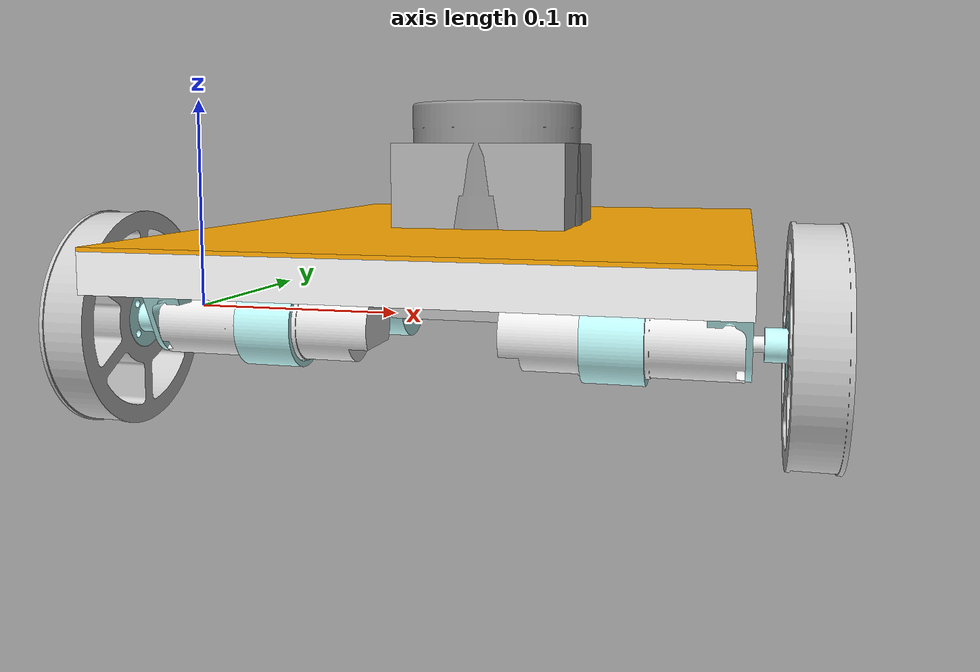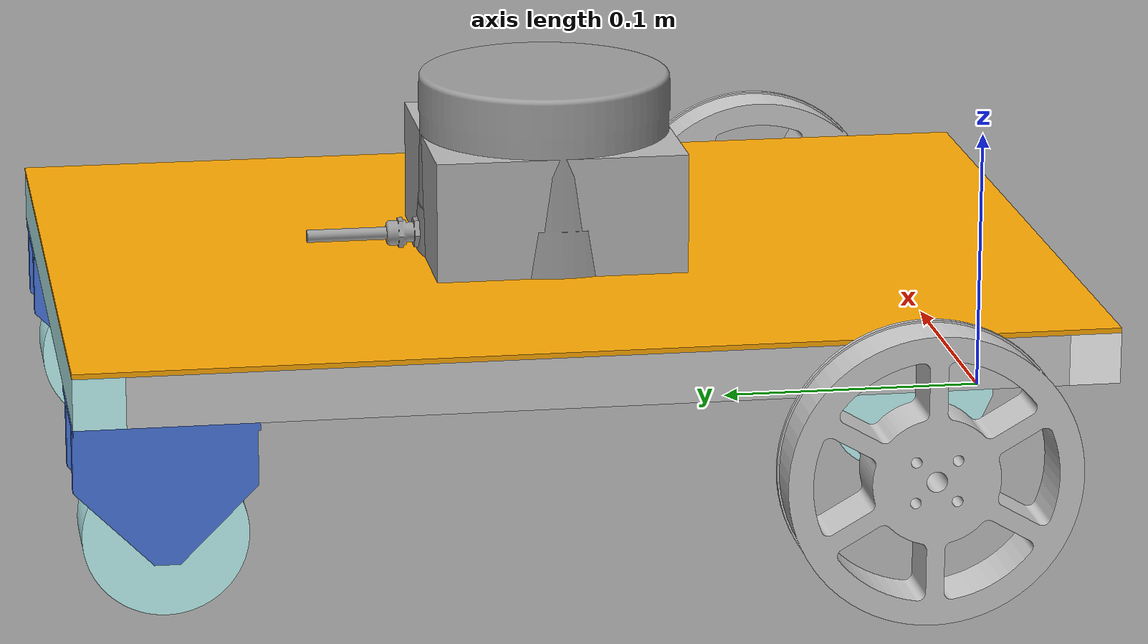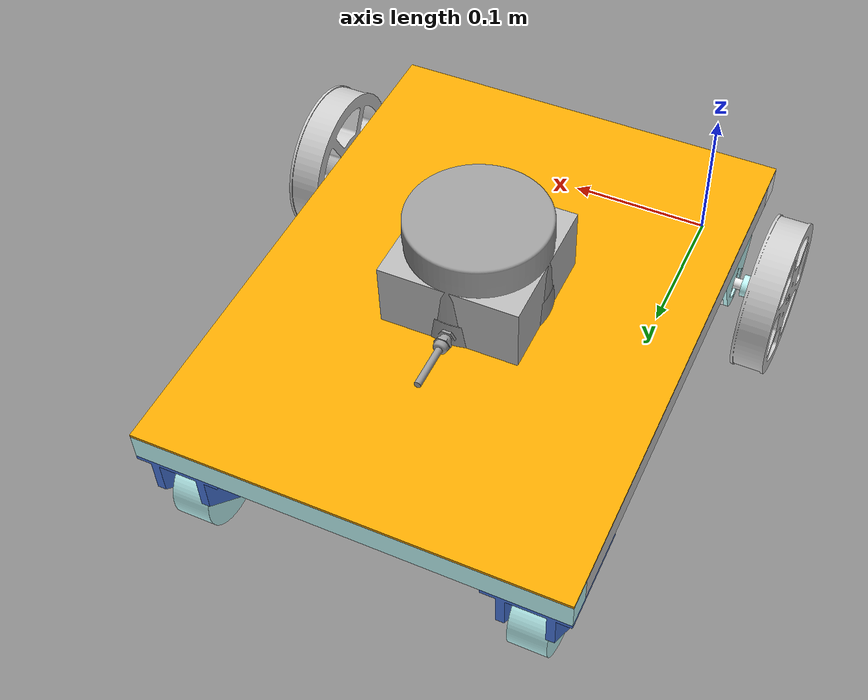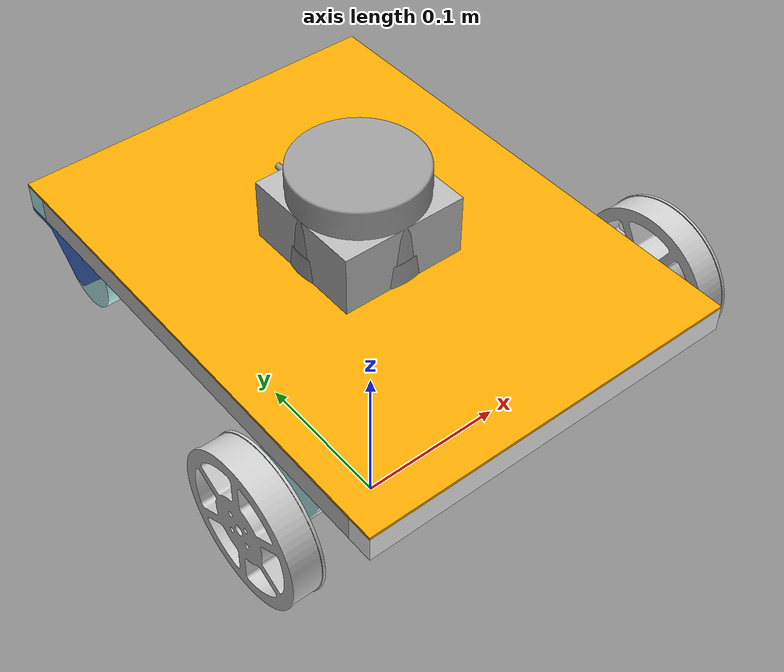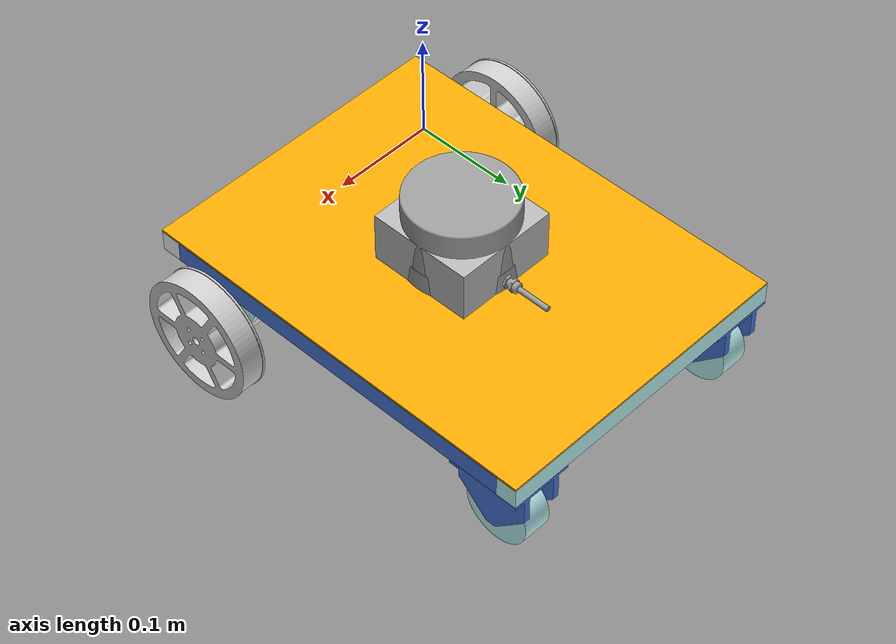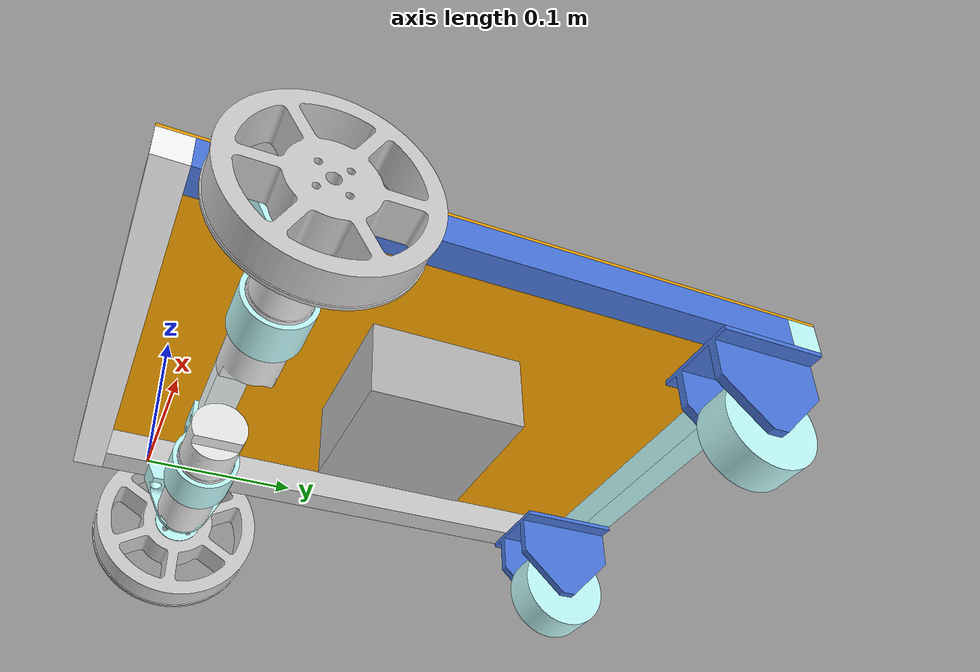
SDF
<sdf version='1.11'>
    <model name='mini_agv'>
    <link name='base_link'>
      <inertial>
        <pose>0 0 0 0 0 0</pose>
        <mass>0.001</mass>
        <inertia>
          <ixx>1e-6</ixx><iyy>1e-6</iyy><izz>1e-6</izz>
          <ixy>0</ixy><ixz>0</ixz><iyz>0</iyz>
        </inertia>
      </inertial>
    </link>

    <joint name='base_to_assy' type='fixed'>
      <parent>base_link</parent>
      <child>base_assy_link</child>
      <pose>0 0 0 0 0 -1.5708</pose>   <!-- rotate child by -90° about Z -->
    </joint>
      <link name='base_assy_link'>
        <inertial>
          <pose>0.111896416619668 0.12818213973935061 0.024156114101248152 0 0 0</pose>
          <mass>3.5293253999999998</mass>
          <inertia>
            <ixx>0.054184095269773733</ixx>
            <ixy>4.0963213800149223e-08</ixy>
            <ixz>1.6729364728587659e-08</ixz>
            <iyy>0.035016300053187059</iyy>
            <iyz>-0.0021047685443255099</iyz>
            <izz>0.083572850012242197</izz>
          </inertia>
        </inertial>
        <collision name='base_assy_link_collision'>
          <pose>0.111897 0.15313199999999999 0.0100307 0 0 0</pose>
          <geometry>
            <mesh>
              <scale>1 1 1</scale>
              <uri>model://mini_agv_description/assets/part_5.stl</uri>
            </mesh>
          </geometry>
        </collision>
        <collision name='base_assy_link_collision_1'>
          <pose>0.111897 0.15313199999999999 0.0100307 0 0 0</pose>
          <geometry>
            <mesh>
              <scale>1 1 1</scale>
              <uri>model://mini_agv_description/assets/part_6.stl</uri>
            </mesh>
          </geometry>
        </collision>
        <collision name='base_assy_link_collision_2'>
          <pose>0.111897 0.15313199999999999 0.0100307 0 0 0</pose>
          <geometry>
            <mesh>
              <scale>1 1 1</scale>
              <uri>model://mini_agv_description/assets/part_3.stl</uri>
            </mesh>
          </geometry>
        </collision>
        <collision name='base_assy_link_collision_3'>
          <pose>0.111897 0.15313199999999999 0.0100307 0 0 0</pose>
          <geometry>
            <mesh>
              <scale>1 1 1</scale>
              <uri>model://mini_agv_description/assets/part_4.stl</uri>
            </mesh>
          </geometry>
        </collision>
        <collision name='base_assy_link_collision_4'>
          <pose>0.111897 0.15313199999999999 0.0100307 0 0 0</pose>
          <geometry>
            <mesh>
              <scale>1 1 1</scale>
              <uri>model://mini_agv_description/assets/part_2.stl</uri>
            </mesh>
          </geometry>
        </collision>
        <collision name='base_assy_link_collision_5'>
          <pose>0.111897 0.15313199999999999 0.0100307 0 0 0</pose>
          <geometry>
            <mesh>
              <scale>1 1 1</scale>
              <uri>model://mini_agv_description/assets/part_1.stl</uri>
            </mesh>
          </geometry>
        </collision>
        <collision name='base_assy_link_fixed_joint_lump__caster_frame_link_collision_6'>
          <pose>0.2183970000000911 0.31813195041173109 -0.038219299999999998 0 0 1.5708</pose>
          <geometry>
            <mesh>
              <scale>1 1 1</scale>
              <uri>model://mini_agv_description/assets/caster_frame.stl</uri>
            </mesh>
          </geometry>
        </collision>
        <collision name='base_assy_link_fixed_joint_lump__caster_frame_2_link_collision_7'>
          <pose>-0.021603439999908929 0.31813195041173109 -0.038219299999999998 0 0 1.5708</pose>
          <geometry>
            <mesh>
              <scale>1 1 1</scale>
              <uri>model://mini_agv_description/assets/caster_frame.stl</uri>
            </mesh>
          </geometry>
        </collision>
        <collision name='base_assy_link_fixed_joint_lump__velodyne_lidar_link_collision_8'>
          <pose>0.111897 0.15313199999999999 0.032030700000000002 1.5707899999999997 -1.6653345369377348e-16 1.5708</pose>
          <geometry>
            <mesh>
              <scale>1 1 1</scale>
              <uri>model://mini_agv_description/assets/velodyne_lidar.stl</uri>
            </mesh>
          </geometry>
        </collision>
        <collision name='base_assy_link_fixed_joint_lump__pg36_assy_link_collision_9'>
          <pose>0.25889699999995269 0.033132325712435733 -0.0129693 -3.1415889803846895 -1.5707963118937354 0</pose>
          <geometry>
            <mesh>
              <scale>1 1 1</scale>
              <uri>model://mini_agv_description/assets/pg36_body.stl</uri>
            </mesh>
          </geometry>
        </collision>
        <collision name='base_assy_link_fixed_joint_lump__pg36_assy_link_collision_10'>
          <pose>0.25909699999995139 0.033132326447076747 -0.0129693 -1.5708 0 1.5708</pose>
          <geometry>
            <mesh>
              <scale>1 1 1</scale>
              <uri>model://mini_agv_description/assets/bracket_body.stl</uri>
            </mesh>
          </geometry>
        </collision>
        <collision name='base_assy_link_fixed_joint_lump__pg36_assy_link_collision_11'>
          <pose>0.26189699999993249 0.033132336732051043 -0.0129693 -1.5708 0 1.5708</pose>
          <geometry>
            <mesh>
              <scale>1 1 1</scale>
              <uri>model://mini_agv_description/assets/bracket_shaft.stl</uri>
            </mesh>
          </geometry>
        </collision>
        <collision name='base_assy_link_fixed_joint_lump__pg36_assy_link_collision_12'>
          <pose>0.25889699999995269 0.033132325712435733 -0.0129693 -3.1415889803846895 -1.5707963118937354 0</pose>
          <geometry>
            <mesh>
              <scale>1 1 1</scale>
              <uri>model://mini_agv_description/assets/pg36_shaft.stl</uri>
            </mesh>
          </geometry>
        </collision>
        <collision name='base_assy_link_fixed_joint_lump__pg36_assy_2_link_collision_13'>
          <pose>-0.035103399999952781 0.033132325712435733 -0.0129693 -3.6732051033734664e-06 -1.5707963267948966 0</pose>
          <geometry>
            <mesh>
              <scale>1 1 1</scale>
              <uri>model://mini_agv_description/assets/pg36_body.stl</uri>
            </mesh>
          </geometry>
        </collision>
        <collision name='base_assy_link_fixed_joint_lump__pg36_assy_2_link_collision_14'>
          <pose>-0.035303399999951433 0.033132326447076747 -0.0129693 -1.5708 0 -1.5708</pose>
          <geometry>
            <mesh>
              <scale>1 1 1</scale>
              <uri>model://mini_agv_description/assets/bracket_body.stl</uri>
            </mesh>
          </geometry>
        </collision>
        <collision name='base_assy_link_fixed_joint_lump__pg36_assy_2_link_collision_15'>
          <pose>-0.038103399999932543 0.033132336732051043 -0.0129693 -1.5708 0 -1.5708</pose>
          <geometry>
            <mesh>
              <scale>1 1 1</scale>
              <uri>model://mini_agv_description/assets/bracket_shaft.stl</uri>
            </mesh>
          </geometry>
        </collision>
        <collision name='base_assy_link_fixed_joint_lump__pg36_assy_2_link_collision_16'>
          <pose>-0.035103399999952781 0.033132325712435733 -0.0129693 -3.6732051033734664e-06 -1.5707963267948966 0</pose>
          <geometry>
            <mesh>
              <scale>1 1 1</scale>
              <uri>model://mini_agv_description/assets/pg36_shaft.stl</uri>
            </mesh>
          </geometry>
        </collision>
        <visual name='base_assy_link_visual'>
          <pose>0.111897 0.15313199999999999 0.0100307 0 0 0</pose>
          <geometry>
            <mesh>
              <scale>1 1 1</scale>
              <uri>model://mini_agv_description/assets/part_5.stl</uri>
            </mesh>
          </geometry>
          <material>
            <diffuse>0.96078372 1 1 1</diffuse>
            <ambient>0.96078372 1 1 1</ambient>
          </material>
        </visual>
        <visual name='base_assy_link_visual_1'>
          <pose>0.111897 0.15313199999999999 0.0100307 0 0 0</pose>
          <geometry>
            <mesh>
              <scale>1 1 1</scale>
              <uri>model://mini_agv_description/assets/part_6.stl</uri>
            </mesh>
          </geometry>
          <material>
            <diffuse>1 0.661764979 0.00490196235 1</diffuse>
            <ambient>1 0.661764979 0.00490196235 1</ambient>
          </material>
        </visual>
        <visual name='base_assy_link_visual_2'>
          <pose>0.111897 0.15313199999999999 0.0100307 0 0 0</pose>
          <geometry>
            <mesh>
              <scale>1 1 1</scale>
              <uri>model://mini_agv_description/assets/part_3.stl</uri>
            </mesh>
          </geometry>
          <material>
            <diffuse>0.28921625 0.475489974 0.882352531 1</diffuse>
            <ambient>0.28921625 0.475489974 0.882352531 1</ambient>
          </material>
        </visual>
        <visual name='base_assy_link_visual_3'>
          <pose>0.111897 0.15313199999999999 0.0100307 0 0 0</pose>
          <geometry>
            <mesh>
              <scale>1 1 1</scale>
              <uri>model://mini_agv_description/assets/part_4.stl</uri>
            </mesh>
          </geometry>
          <material>
            <diffuse>1 1 1 1</diffuse>
            <ambient>1 1 1 1</ambient>
          </material>
        </visual>
        <visual name='base_assy_link_visual_4'>
          <pose>0.111897 0.15313199999999999 0.0100307 0 0 0</pose>
          <geometry>
            <mesh>
              <scale>1 1 1</scale>
              <uri>model://mini_agv_description/assets/part_2.stl</uri>
            </mesh>
          </geometry>
          <material>
            <diffuse>0.808823764 0.808823764 0.808823764 1</diffuse>
            <ambient>0.808823764 0.808823764 0.808823764 1</ambient>
          </material>
        </visual>
        <visual name='base_assy_link_visual_5'>
          <pose>0.111897 0.15313199999999999 0.0100307 0 0 0</pose>
          <geometry>
            <mesh>
              <scale>1 1 1</scale>
              <uri>model://mini_agv_description/assets/part_1.stl</uri>
            </mesh>
          </geometry>
          <material>
            <diffuse>0.769607484 1 1 1</diffuse>
            <ambient>0.769607484 1 1 1</ambient>
          </material>
        </visual>
        <visual name='base_assy_link_fixed_joint_lump__caster_frame_link_visual_6'>
          <pose>0.2183970000000911 0.31813195041173109 -0.038219299999999998 0 0 1.5708</pose>
          <geometry>
            <mesh>
              <scale>1 1 1</scale>
              <uri>model://mini_agv_description/assets/caster_frame.stl</uri>
            </mesh>
          </geometry>
          <material>
            <diffuse>0.28921625 0.475489974 0.882352531 1</diffuse>
            <ambient>0.28921625 0.475489974 0.882352531 1</ambient>
          </material>
        </visual>
        <visual name='base_assy_link_fixed_joint_lump__caster_frame_2_link_visual_7'>
          <pose>-0.021603439999908929 0.31813195041173109 -0.038219299999999998 0 0 1.5708</pose>
          <geometry>
            <mesh>
              <scale>1 1 1</scale>
              <uri>model://mini_agv_description/assets/caster_frame.stl</uri>
            </mesh>
          </geometry>
          <material>
            <diffuse>0.28921625 0.475489974 0.882352531 1</diffuse>
            <ambient>0.28921625 0.475489974 0.882352531 1</ambient>
          </material>
        </visual>
        <visual name='base_assy_link_fixed_joint_lump__velodyne_lidar_link_visual_8'>
          <pose>0.111897 0.15313199999999999 0.032030700000000002 1.5707899999999997 -1.6653345369377348e-16 1.5708</pose>
          <geometry>
            <mesh>
              <scale>1 1 1</scale>
              <uri>model://mini_agv_description/assets/velodyne_lidar.stl</uri>
            </mesh>
          </geometry>
          <material>
            <diffuse>0.612744987 0.612744987 0.612744987 1</diffuse>
            <ambient>0.612744987 0.612744987 0.612744987 1</ambient>
          </material>
        </visual>
        <visual name='base_assy_link_fixed_joint_lump__pg36_assy_link_visual_9'>
          <pose>0.25889699999995269 0.033132325712435733 -0.0129693 -3.1415889803846895 -1.5707963118937354 0</pose>
          <geometry>
            <mesh>
              <scale>1 1 1</scale>
              <uri>model://mini_agv_description/assets/pg36_body.stl</uri>
            </mesh>
          </geometry>
          <material>
            <diffuse>0.936275005 0.936275005 0.936275005 1</diffuse>
            <ambient>0.936275005 0.936275005 0.936275005 1</ambient>
          </material>
        </visual>
        <visual name='base_assy_link_fixed_joint_lump__pg36_assy_link_visual_10'>
          <pose>0.25909699999995139 0.033132326447076747 -0.0129693 -1.5708 0 1.5708</pose>
          <geometry>
            <mesh>
              <scale>1 1 1</scale>
              <uri>model://mini_agv_description/assets/bracket_body.stl</uri>
            </mesh>
          </geometry>
          <material>
            <diffuse>0.769607484 1 1 1</diffuse>
            <ambient>0.769607484 1 1 1</ambient>
          </material>
        </visual>
        <visual name='base_assy_link_fixed_joint_lump__pg36_assy_link_visual_11'>
          <pose>0.26189699999993249 0.033132336732051043 -0.0129693 -1.5708 0 1.5708</pose>
          <geometry>
            <mesh>
              <scale>1 1 1</scale>
              <uri>model://mini_agv_description/assets/bracket_shaft.stl</uri>
            </mesh>
          </geometry>
          <material>
            <diffuse>0.769607484 1 1 1</diffuse>
            <ambient>0.769607484 1 1 1</ambient>
          </material>
        </visual>
        <visual name='base_assy_link_fixed_joint_lump__pg36_assy_link_visual_12'>
          <pose>0.25889699999995269 0.033132325712435733 -0.0129693 -3.1415889803846895 -1.5707963118937354 0</pose>
          <geometry>
            <mesh>
              <scale>1 1 1</scale>
              <uri>model://mini_agv_description/assets/pg36_shaft.stl</uri>
            </mesh>
          </geometry>
          <material>
            <diffuse>0.936275005 0.936275005 0.936275005 1</diffuse>
            <ambient>0.936275005 0.936275005 0.936275005 1</ambient>
          </material>
        </visual>
        <visual name='base_assy_link_fixed_joint_lump__pg36_assy_2_link_visual_13'>
          <pose>-0.035103399999952781 0.033132325712435733 -0.0129693 -3.6732051033734664e-06 -1.5707963267948966 0</pose>
          <geometry>
            <mesh>
              <scale>1 1 1</scale>
              <uri>model://mini_agv_description/assets/pg36_body.stl</uri>
            </mesh>
          </geometry>
          <material>
            <diffuse>0.936275005 0.936275005 0.936275005 1</diffuse>
            <ambient>0.936275005 0.936275005 0.936275005 1</ambient>
          </material>
        </visual>
        <visual name='base_assy_link_fixed_joint_lump__pg36_assy_2_link_visual_14'>
          <pose>-0.035303399999951433 0.033132326447076747 -0.0129693 -1.5708 0 -1.5708</pose>
          <geometry>
            <mesh>
              <scale>1 1 1</scale>
              <uri>model://mini_agv_description/assets/bracket_body.stl</uri>
            </mesh>
          </geometry>
          <material>
            <diffuse>0.769607484 1 1 1</diffuse>
            <ambient>0.769607484 1 1 1</ambient>
          </material>
        </visual>
        <visual name='base_assy_link_fixed_joint_lump__pg36_assy_2_link_visual_15'>
          <pose>-0.038103399999932543 0.033132336732051043 -0.0129693 -1.5708 0 -1.5708</pose>
          <geometry>
            <mesh>
              <scale>1 1 1</scale>
              <uri>model://mini_agv_description/assets/bracket_shaft.stl</uri>
            </mesh>
          </geometry>
          <material>
            <diffuse>0.769607484 1 1 1</diffuse>
            <ambient>0.769607484 1 1 1</ambient>
          </material>
        </visual>
        <visual name='base_assy_link_fixed_joint_lump__pg36_assy_2_link_visual_16'>
          <pose>-0.035103399999952781 0.033132325712435733 -0.0129693 -3.6732051033734664e-06 -1.5707963267948966 0</pose>
          <geometry>
            <mesh>
              <scale>1 1 1</scale>
              <uri>model://mini_agv_description/assets/pg36_shaft.stl</uri>
            </mesh>
          </geometry>
          <material>
            <diffuse>0.936275005 0.936275005 0.936275005 1</diffuse>
            <ambient>0.936275005 0.936275005 0.936275005 1</ambient>
          </material>
        </visual>
      </link>

      <!-- ==================== JOINTS AND LINKS ==================== -->
      <joint name='caster_wheel_1_joint' type='revolute'>
        <pose relative_to='base_assy_link'>0.2183970000000911 0.31813195041173109 -0.038219299999999998 1.570792653558434 -1.5707926536057681 -1.5707926535624277</pose>
        <parent>base_assy_link</parent>
        <child>caster_wheel_link</child>
        <axis>
          <xyz>0 0 1</xyz>
          <limit>
            <effort>10</effort>
            <velocity>10</velocity>
            <lower>-inf</lower>
            <upper>inf</upper>
          </limit>
          <dynamics>
            <spring_reference>0</spring_reference>
            <spring_stiffness>0</spring_stiffness>
          </dynamics>
        </axis>
      </joint>

      <link name='caster_wheel_link'>
        <pose relative_to='caster_wheel_1_joint'>0 0 0 0 0 0</pose>
        <inertial>
          <pose>0 0 -0.0135 0 0 0</pose>
          <mass>0.12232800000000001</mass>
          <inertia>
            <ixx>3.9024499999999999e-05</ixx>
            <ixy>0</ixy>
            <ixz>0</ixz>
            <iyy>3.9024499999999999e-05</iyy>
            <iyz>0</iyz>
            <izz>6.3186099999999995e-05</izz>
          </inertia>
        </inertial>
        <collision name='caster_wheel_link_collision'>
          <pose>0 0 0 1.5708 0 0</pose>
          <geometry>
            <mesh>
              <scale>1 1 1</scale>
              <uri>model://mini_agv_description/assets/caster_wheel.stl</uri>
            </mesh>
          </geometry>
        </collision>
        <visual name='caster_wheel_link_visual'>
          <pose>0 0 0 1.5708 0 0</pose>
          <geometry>
            <mesh>
              <scale>1 1 1</scale>
              <uri>model://mini_agv_description/assets/caster_wheel.stl</uri>
            </mesh>
          </geometry>
          <material>
            <diffuse>0.769607484 1 1 1</diffuse>
            <ambient>0.769607484 1 1 1</ambient>
          </material>
        </visual>
      </link>

      <joint name='caster_wheel_2_joint' type='revolute'>
        <pose relative_to='base_assy_link'>0.0053965599999089287 0.31813204958826891 -0.038219299999999998 -1.570792653558434 1.5707926536057681 -1.5707926535624277</pose>
        <parent>base_assy_link</parent>
        <child>caster_wheel_2_link</child>
        <axis>
          <xyz>0 0 1</xyz>
          <limit>
            <effort>10</effort>
            <velocity>10</velocity>
            <lower>-inf</lower>
            <upper>inf</upper>
          </limit>
          <dynamics>
            <spring_reference>0</spring_reference>
            <spring_stiffness>0</spring_stiffness>
          </dynamics>
        </axis>
      </joint>

      <link name='caster_wheel_2_link'>
        <pose relative_to='caster_wheel_2_joint'>0 0 0 0 0 0</pose>
        <inertial>
          <pose>0 0 -0.0135 0 0 0</pose>
          <mass>0.12232800000000001</mass>
          <inertia>
            <ixx>3.9024499999999999e-05</ixx>
            <ixy>0</ixy>
            <ixz>0</ixz>
            <iyy>3.9024499999999999e-05</iyy>
            <iyz>0</iyz>
            <izz>6.3186099999999995e-05</izz>
          </inertia>
        </inertial>
        <collision name='caster_wheel_2_link_collision'>
          <pose>0 0 0 1.5708 0 0</pose>
          <geometry>
            <mesh>
              <scale>1 1 1</scale>
              <uri>model://mini_agv_description/assets/caster_wheel.stl</uri>
            </mesh>
          </geometry>
        </collision>
        <visual name='caster_wheel_2_link_visual'>
          <pose>0 0 0 1.5708 0 0</pose>
          <geometry>
            <mesh>
              <scale>1 1 1</scale>
              <uri>model://mini_agv_description/assets/caster_wheel.stl</uri>
            </mesh>
          </geometry>
          <material>
            <diffuse>0.769607484 1 1 1</diffuse>
            <ambient>0.769607484 1 1 1</ambient>
          </material>
        </visual>
      </link>

      <joint name='wheel_1_joint' type='revolute'>
        <pose relative_to='base_assy_link'>0.28019699999980913 0.033132403951704428 -0.0129693 -1.570792653558434 1.5707926536057681 -1.5707926535624277</pose>
        <parent>base_assy_link</parent>
        <child>wheel_hub_assy_link</child>
        <axis>
          <xyz>0 0 -1</xyz>
          <limit>
            <effort>10</effort>
            <velocity>10</velocity>
            <lower>-inf</lower>
            <upper>inf</upper>
          </limit>
          <dynamics>
            <spring_reference>0</spring_reference>
            <spring_stiffness>0</spring_stiffness>
          </dynamics>
        </axis>
      </joint>

      <link name='wheel_hub_assy_link'>
        <pose relative_to='wheel_1_joint'>0 0 0 0 0 0</pose>
        <inertial>
          <pose>0 0 0.0084338399999999997 0 0 0</pose>
          <mass>0.177204</mass>
          <inertia>
            <ixx>0.000154537</ixx>
            <ixy>0</ixy>
            <ixz>0</ixz>
            <iyy>0.000154537</iyy>
            <iyz>0</iyz>
            <izz>0.00028956400000000002</izz>
          </inertia>
        </inertial>
        <collision name='wheel_hub_assy_link_collision'>
          <pose>0 0 0 1.5708 0 0</pose>
          <geometry>
            <mesh>
              <scale>1 1 1</scale>
              <uri>model://mini_agv_description/assets/wheel.stl</uri>
            </mesh>
          </geometry>
        </collision>
        <collision name='wheel_hub_assy_link_collision_1'>
          <pose>0 0 0 1.5708 0 0</pose>
          <geometry>
            <mesh>
              <scale>1 1 1</scale>
              <uri>model://mini_agv_description/assets/8mm_flange_hub.stl</uri>
            </mesh>
          </geometry>
        </collision>
        <visual name='wheel_hub_assy_link_visual'>
          <pose>0 0 0 1.5708 0 0</pose>
          <geometry>
            <mesh>
              <scale>1 1 1</scale>
              <uri>model://mini_agv_description/assets/wheel.stl</uri>
            </mesh>
          </geometry>
          <material>
            <diffuse>0.808823764 0.808823764 0.808823764 1</diffuse>
            <ambient>0.808823764 0.808823764 0.808823764 1</ambient>
          </material>
        </visual>
        <visual name='wheel_hub_assy_link_visual_1'>
          <pose>0 0 0 1.5708 0 0</pose>
          <geometry>
            <mesh>
              <scale>1 1 1</scale>
              <uri>model://mini_agv_description/assets/8mm_flange_hub.stl</uri>
            </mesh>
          </geometry>
          <material>
            <diffuse>0.769607484 1 1 1</diffuse>
            <ambient>0.769607484 1 1 1</ambient>
          </material>
        </visual>
      </link>

      <joint name='wheel_2_joint' type='revolute'>
        <pose relative_to='base_assy_link'>-0.05640339999980909 0.033132403951704428 -0.0129693 -1.5708 1.1102230246251565e-16 1.5707953071795873</pose>
        <parent>base_assy_link</parent>
        <child>wheel_hub_assy_2_link</child>
        <axis>
          <xyz>0 0 1</xyz>
          <limit>
            <effort>10</effort>
            <velocity>10</velocity>
            <lower>-inf</lower>
            <upper>inf</upper>
          </limit>
          <dynamics>
            <spring_reference>0</spring_reference>
            <spring_stiffness>0</spring_stiffness>
          </dynamics>
        </axis>
      </joint>

      <link name='wheel_hub_assy_2_link'>
        <pose relative_to='wheel_2_joint'>0 0 0 0 0 0</pose>
        <inertial>
          <pose>0 0 0.0084338399999999997 0 0 0</pose>
          <mass>0.177204</mass>
          <inertia>
            <ixx>0.000154537</ixx>
            <ixy>0</ixy>
            <ixz>0</ixz>
            <iyy>0.000154537</iyy>
            <iyz>0</iyz>
            <izz>0.00028956400000000002</izz>
          </inertia>
        </inertial>
        <collision name='wheel_hub_assy_2_link_collision'>
          <pose>0 0 0 1.5708 0 0</pose>
          <geometry>
            <mesh>
              <scale>1 1 1</scale>
              <uri>model://mini_agv_description/assets/wheel.stl</uri>
            </mesh>
          </geometry>
        </collision>
        <collision name='wheel_hub_assy_2_link_collision_1'>
          <pose>0 0 0 1.5708 0 0</pose>
          <geometry>
            <mesh>
              <scale>1 1 1</scale>
              <uri>model://mini_agv_description/assets/8mm_flange_hub.stl</uri>
            </mesh>
          </geometry>
        </collision>
        <visual name='wheel_hub_assy_2_link_visual'>
          <pose>0 0 0 1.5708 0 0</pose>
          <geometry>
            <mesh>
              <scale>1 1 1</scale>
              <uri>model://mini_agv_description/assets/wheel.stl</uri>
            </mesh>
          </geometry>
          <material>
            <diffuse>0.808823764 0.808823764 0.808823764 1</diffuse>
            <ambient>0.808823764 0.808823764 0.808823764 1</ambient>
          </material>
        </visual>
        <visual name='wheel_hub_assy_2_link_visual_1'>
          <pose>0 0 0 1.5708 0 0</pose>
          <geometry>
            <mesh>
              <scale>1 1 1</scale>
              <uri>model://mini_agv_description/assets/8mm_flange_hub.stl</uri>
            </mesh>
          </geometry>
          <material>
            <diffuse>0.769607484 1 1 1</diffuse>
            <ambient>0.769607484 1 1 1</ambient>
          </material>
        </visual>
      </link>

      <!-- Frames -->
      <frame name='caster_1_joint' attached_to='base_assy_link'>
        <pose>0.23189699999999999 0.31813200000000003 0.0100307 0 0 1.5708</pose>
      </frame>
      <frame name='caster_frame_link' attached_to='caster_1_joint'>
        <pose>0 0 0 0 0 0</pose>
      </frame>
      <frame name='caster_2_joint' attached_to='base_assy_link'>
        <pose>-0.0081034399999999999 0.31813200000000003 0.0100307 0 0 1.5708</pose>
      </frame>
      <frame name='caster_frame_2_link' attached_to='caster_2_joint'>
        <pose>0 0 0 0 0 0</pose>
      </frame>
      <frame name='lidar_joint' attached_to='base_assy_link'>
        <pose>0.111897 0.15313199999999999 0.032030700000000002 3.1415899999999999 0 1.5708</pose>
      </frame>
      <frame name='velodyne_lidar_link' attached_to='lidar_joint'>
        <pose>0 0 0 0 0 0</pose>
      </frame>
      <frame name='motor_1_joint' attached_to='base_assy_link'>
        <pose>0.25189699999999998 0.033132300000000003 0.0100307 0 0 1.5708</pose>
      </frame>
      <frame name='pg36_assy_link' attached_to='motor_1_joint'>
        <pose>0 0 0 0 0 0</pose>
      </frame>
      <frame name='motor_2_joint' attached_to='base_assy_link'>
        <pose>-0.028103400000000001 0.033132300000000003 0.0100307 0 0 -1.5708</pose>
      </frame>
      <frame name='pg36_assy_2_link' attached_to='motor_2_joint'>
        <pose>0 0 0 0 0 0</pose>
      </frame>

      <!-- ==================== IMU ==================== -->
      <joint name='imu_joint' type='fixed'>
        <parent>base_assy_link</parent>
        <child>imu_link</child>
        <pose relative_to="base_assy_link">0.111897 0.153132 0.03 0 0 0</pose>
      </joint>

      <link name='imu_link'>
        <pose relative_to="imu_joint"/>
        <visual name="imu_link_visual">
          <geometry>
            <box><size>0.1 0.1 0.1</size></box>
          </geometry>
        </visual>
        <collision name="imu_link_collision">
          <geometry>
            <box><size>0.1 0.1 0.1</size></box>
          </geometry>
        </collision>
        <inertial>
          <pose>0 0 0 0 0 0</pose>
          <mass>0.1</mass>
          <inertia>
            <ixx>0.0001666667</ixx>
            <iyy>0.0001666667</iyy>
            <izz>0.0001666667</izz>
            <ixy>0</ixy>
            <ixz>0</ixz>
            <iyz>0</iyz>
          </inertia>
        </inertial>
        <sensor name="imu_sensor" type="imu">
          <always_on>true</always_on>
          <update_rate>100</update_rate>
          <visualize>true</visualize>
          <topic>demo/imu</topic>
          <gz_frame_id>imu_link</gz_frame_id>
          <imu>
            <angular_velocity>
              <x>
                <noise type="gaussian">
                  <mean>0.0</mean>
                  <stddev>2e-4</stddev>
                  <bias_mean>0.0000075</bias_mean>
                  <bias_stddev>0.0000008</bias_stddev>
                </noise>
              </x>
              <y>
                <noise type="gaussian">
                  <mean>0.0</mean>
                  <stddev>2e-4</stddev>
                  <bias_mean>0.0000075</bias_mean>
                  <bias_stddev>0.0000008</bias_stddev>
                </noise>
              </y>
              <z>
                <noise type="gaussian">
                  <mean>0.0</mean>
                  <stddev>2e-4</stddev>
                  <bias_mean>0.0000075</bias_mean>
                  <bias_stddev>0.0000008</bias_stddev>
                </noise>
              </z>
            </angular_velocity>
            <linear_acceleration>
              <x>
                <noise type="gaussian">
                  <mean>0.0</mean>
                  <stddev>1.7e-2</stddev>
                  <bias_mean>0.1</bias_mean>
                  <bias_stddev>0.001</bias_stddev>
                </noise>
              </x>
              <y>
                <noise type="gaussian">
                  <mean>0.0</mean>
                  <stddev>1.7e-2</stddev>
                  <bias_mean>0.1</bias_mean>
                  <bias_stddev>0.001</bias_stddev>
                </noise>
              </y>
              <z>
                <noise type="gaussian">
                  <mean>0.0</mean>
                  <stddev>1.7e-2</stddev>
                  <bias_mean>0.1</bias_mean>
                  <bias_stddev>0.001</bias_stddev>
                </noise>
              </z>
            </linear_acceleration>
          </imu>
        </sensor>
      </link>

      <!-- ==================== DIFF DRIVE PLUGIN ==================== -->
      <plugin filename="gz-sim-diff-drive-system" name="gz::sim::systems::DiffDrive">
        <left_joint>wheel_2_joint</left_joint>
        <right_joint>wheel_1_joint</right_joint>
        <wheel_separation>0.3366</wheel_separation>
        <wheel_radius>0.05675</wheel_radius>
        <max_linear_acceleration>0.1</max_linear_acceleration>
        <topic>/demo/cmd_vel</topic>
        <odom_topic>/demo/odom</odom_topic>
        <tf_topic>/tf</tf_topic>
        <frame_id>odom</frame_id>
        <child_frame_id>base_link</child_frame_id>   <!-- odometry published in base_link frame -->

      </plugin>

      <plugin filename="gz-sim-joint-state-publisher-system" name="gz::sim::systems::JointStatePublisher">
        <topic>joint_states</topic>
      </plugin>

    </model>
  </sdf>
